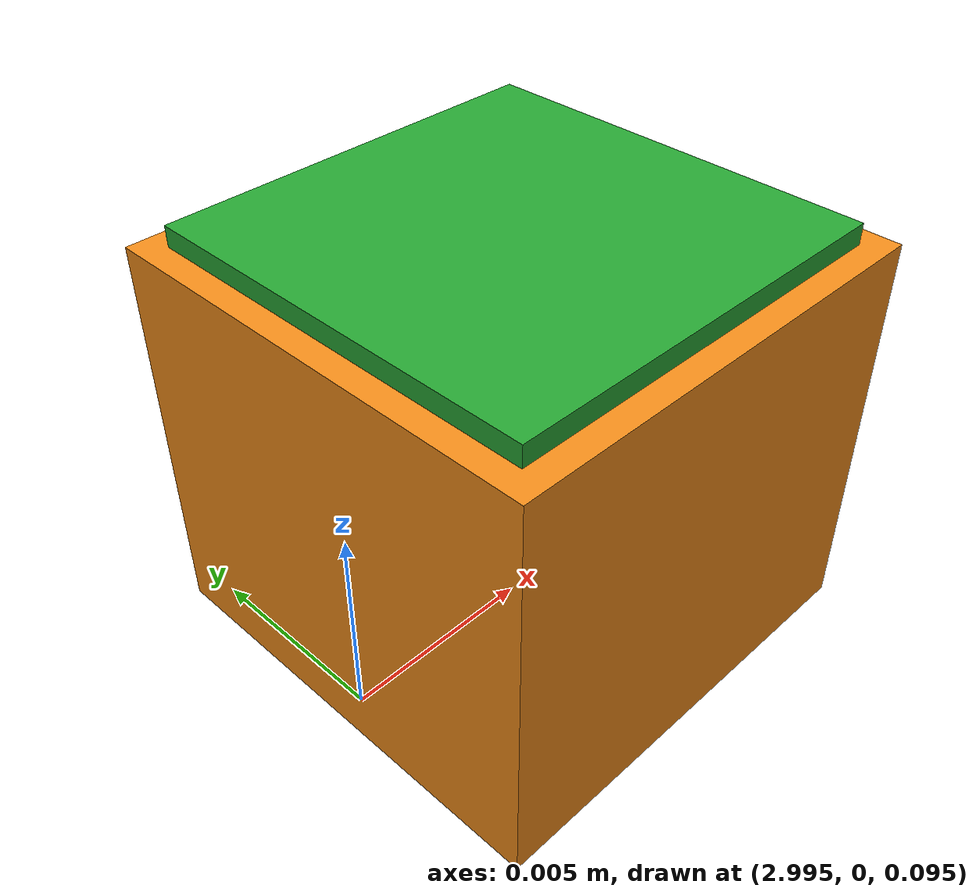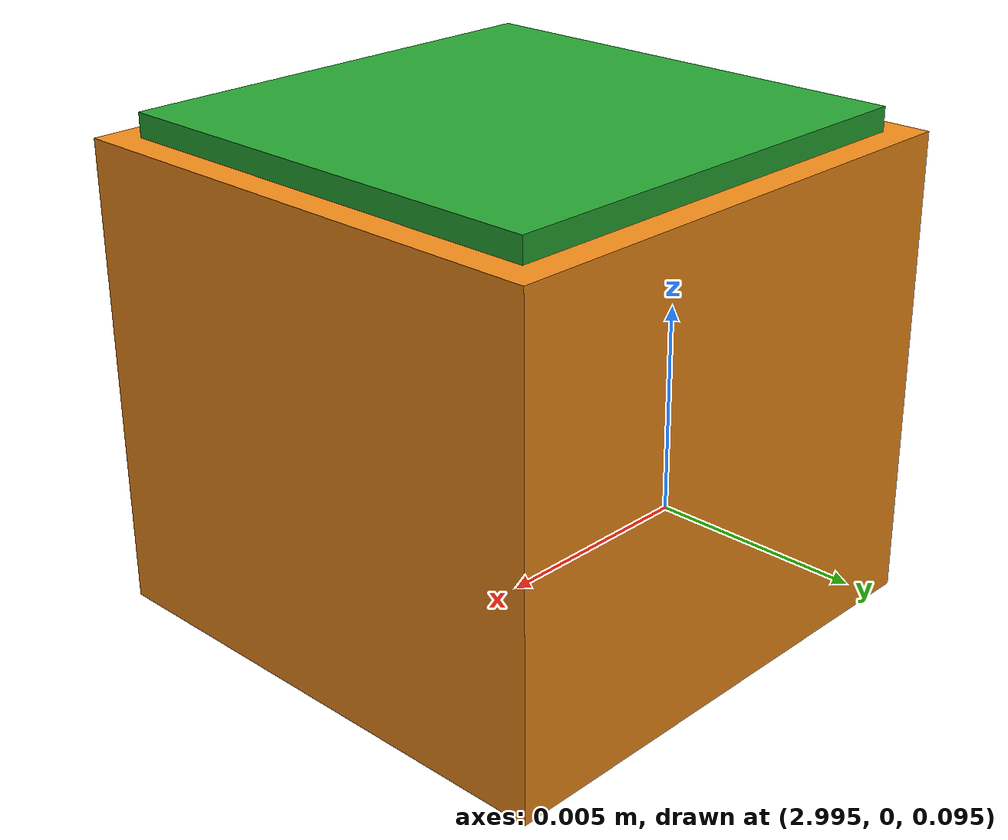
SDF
<?xml version="1.0" ?>
<sdf version="1.4">
  <world name="default">
    <!-- A global light source -->
    <include>
      <uri>model://sun</uri>
    </include>
    <!-- A ground plane -->
    <include>
      <uri>model://ground_plane</uri>
    </include>
    <!-- Own physics settings to speed up simulation -->
    <physics type='ode'>
      <max_step_size>0.01</max_step_size>
      <real_time_factor>1</real_time_factor>
      <real_time_update_rate>1000</real_time_update_rate>
      <gravity>0 0 -9.8</gravity>
    </physics>

    <model name='unit_sphere_4'>
      <pose>3 0 0.1 0 0 0</pose>
      <link name='link'>
        <inertial>
          <mass>1000</mass>
          <inertia>
            <ixx>1</ixx>
            <ixy>0</ixy>
            <ixz>0</ixz>
            <iyy>1</iyy>
            <iyz>0</iyz>
            <izz>1</izz>
          </inertia>
        </inertial>
        <collision name='collision'>
          <geometry>
            <box>
              <size>.25 .25 .01</size>
            </box>
          </geometry>
          <max_contacts>10</max_contacts>
          <surface>
            <bounce/>
            <friction>
              <ode/>
            </friction>
            <contact>
              <ode/>
            </contact>
          </surface>
        </collision>
        <visual name='visual'>
          <geometry>
            <box>
              <size>.25 .25 .01</size>
            </box>
          </geometry>
          <material>
            <script>
              <uri>file://media/materials/scripts/gazebo.material</uri>
              <name>Gazebo/Orange</name>
            </script>
          </material>
        </visual>

        <visual name='visual_center'>
          <geometry>
            <box>
              <size>.010 .010 .011</size>
            </box>
          </geometry>
          <material>
            <script>
              <uri>file://media/materials/scripts/gazebo.material</uri>
              <name>Gazebo/Green</name>
            </script>
          </material>
        </visual>

        <velocity_decay>
          <linear>0</linear>
          <angular>0</angular>
        </velocity_decay>
        <self_collide>0</self_collide>
        <kinematic>0</kinematic>
        <gravity>1</gravity>
      </link>
      <static>0</static>
    </model>

  </world>
</sdf>
